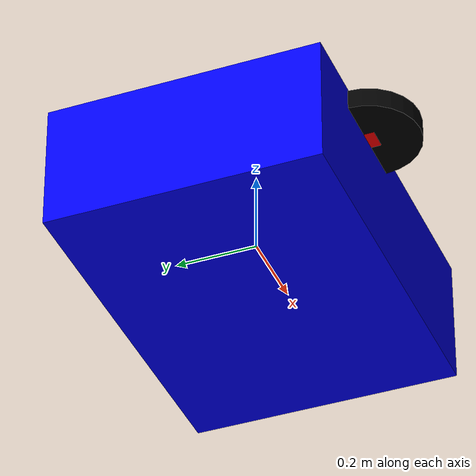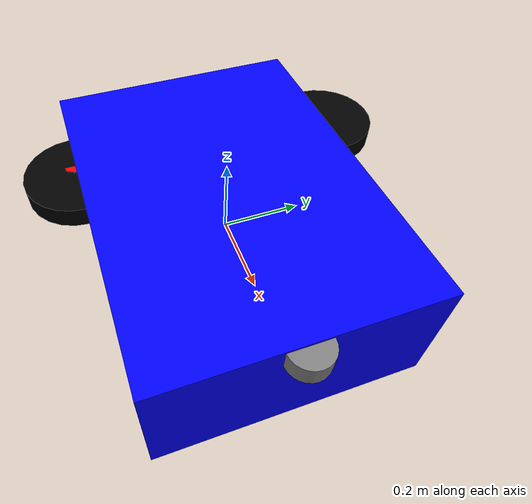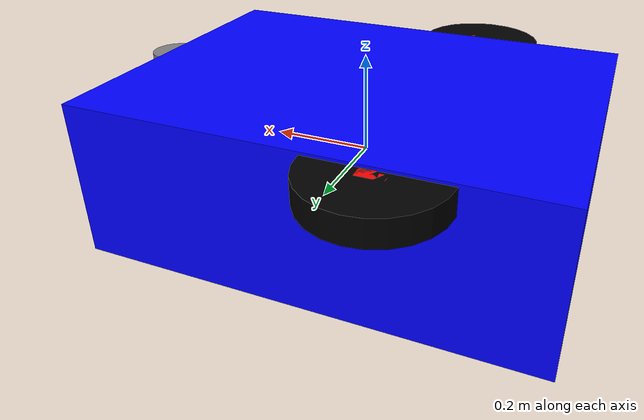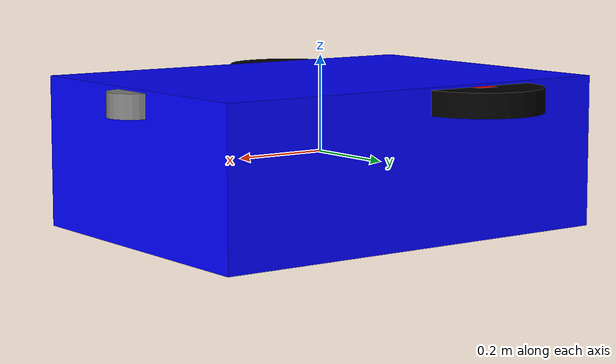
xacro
<?xml version="1.0"?>
<robot name="robomow_rl2000" xmlns:xacro="http://ros.org/wiki/xacro">
  <xacro:arg name="hardware_plugin" default="mock_components/GenericSystem"/>

  <!-- PARAMETRAR -->
  <xacro:property name="length" value="0.9"/>
  <xacro:property name="width" value="0.66"/>
  <xacro:property name="height" value="0.315"/>
  <xacro:property name="mass" value="23.7"/>
  <xacro:property name="wheel_radius" value="0.127"/> <!-- 10 tum / 2 i meter -->
  <xacro:property name="wheel_width" value="0.05"/>
  <xacro:property name="wheel_pos_x" value="-0.15"/> <!-- 0.3 m från bakände, med mitt i centrum på 0 -->
  <xacro:property name="wheel_pos_y" value="0.33"/>  <!-- Halv bredd -->

<material name="black">
  <color rgba="0 0 0 1"/>
</material>
<material name="red">
  <color rgba="1 0 0 1"/>
</material>
<material name="green">
  <color rgba="0 1 0 1"/>
</material>
<material name="gray">
  <color rgba="0.5 0.5 0.5 1"/>
</material>

<ros2_control name="RobomowSystem" type="system">
  <hardware>
	  <plugin>$(arg hardware_plugin)</plugin>
    <param name="wheel_radius">0.127</param>
    <param name="feedback_timeout_sec">0.25</param>
  </hardware>
  <joint name="left_wheel_motor_joint">
    <command_interface name="velocity"/>
    <state_interface name="position"/>
    <state_interface name="velocity"/>
  </joint>
  <joint name="right_wheel_motor_joint">
    <command_interface name="velocity"/>
    <state_interface name="position"/>
    <state_interface name="velocity"/>
  </joint>
</ros2_control>

<!-- BASE LINK -->
<link name="dummy_root"/>
<joint name="dummy_root_to_base_link" type="fixed">
  <parent link="dummy_root"/>
  <child link="base_link"/>
  <origin xyz="0 0 0" rpy="0 0 0"/>
</joint>
  <link name="base_link">
    <visual>
      <geometry>
        <box size="${length} ${width} ${height}"/>
      </geometry>
      <material name="blue">
        <color rgba="0 0 1 1"/>
      </material>
    </visual>
    <collision>
      <geometry>
        <box size="${length} ${width} ${height}"/>
      </geometry>
    </collision>
    <inertial>
      <mass value="${mass}"/>
      <inertia
        ixx="1.2" ixy="0.0" ixz="0.0"
        iyy="1.5" iyz="0.0"
        izz="1.0"/>
      <origin xyz="0 0 0" rpy="0 0 0"/>
    </inertial>
  </link>

  <!-- HJUL LINKAR -->
  <xacro:macro name="wheel" params="name">
    <link name="${name}">
      <visual>
        <geometry>
          <cylinder radius="${wheel_radius}" length="${wheel_width}"/>
        </geometry>
        <material name="black"/>
      </visual>
      <collision>
        <geometry>
          <cylinder radius="${wheel_radius}" length="${wheel_width}"/>
        </geometry>
      </collision>
      <inertial>
        <mass value="1.5"/>
        <inertia ixx="0.01" ixy="0" ixz="0" iyy="0.01" iyz="0" izz="0.01"/>
        <origin xyz="0 0 0" rpy="0 0 0"/>
      </inertial>
    </link>
  </xacro:macro>

  <xacro:wheel name="left_wheel"/>
  <xacro:wheel name="right_wheel"/>

  <!-- CASTER WHEEL -->
  <link name="caster_wheel">
    <visual>
      <geometry>
        <cylinder radius="0.05" length="0.05"/>
      </geometry>
      <material name="gray"/>
    </visual>
    <collision>
      <geometry>
        <cylinder radius="0.05" length="0.05"/>
      </geometry>
    </collision>
    <inertial>
      <mass value="0.5"/>
      <inertia ixx="0.005" ixy="0" ixz="0" iyy="0.005" iyz="0" izz="0.005"/>
      <origin xyz="0 0 0" rpy="0 0 0"/>
    </inertial>
  </link>

  <!-- JOINTS -->

  <!-- Left wheel joint -->
  <joint name="left_wheel_joint" type="continuous">
    <parent link="base_link"/>
    <child link="left_wheel"/>
    <origin xyz="${wheel_pos_x} ${wheel_pos_y} ${wheel_radius}" rpy="0 0 0"/>
    <axis xyz="0 1 0"/>
  </joint>

  <!-- Left wheel encoder joint (dummy sensor joint) -->
  <joint name="left_wheel_encoder_joint" type="fixed">
    <parent link="left_wheel"/>
    <child link="left_wheel_encoder"/>
    <origin xyz="0 0 0" rpy="0 0 0"/>
  </joint>

  <link name="left_wheel_encoder">
    <visual>
      <geometry>
        <sphere radius="0.02"/>
      </geometry>
      <material name="green"/>
    </visual>
  </link>

  <!-- Left wheel motor controller (effort joint) -->
  <joint name="left_wheel_motor_joint" type="continuous">
    <parent link="base_link"/>
    <child link="left_wheel_motor"/>
    <origin xyz="${wheel_pos_x} ${wheel_pos_y} ${wheel_radius}" rpy="0 0 0"/>
    <axis xyz="0 1 0"/>
  </joint>

  <link name="left_wheel_motor">
    <visual>
      <geometry>
        <box size="0.05 0.05 0.05"/>
      </geometry>
      <material name="red"/>
    </visual>
  </link>

  <!-- Right wheel joint -->
  <joint name="right_wheel_joint" type="continuous">
    <parent link="base_link"/>
    <child link="right_wheel"/>
    <origin xyz="${wheel_pos_x} -${wheel_pos_y} ${wheel_radius}" rpy="0 0 0"/>
    <axis xyz="0 1 0"/>
  </joint>

  <!-- Right wheel encoder joint -->
  <joint name="right_wheel_encoder_joint" type="fixed">
    <parent link="right_wheel"/>
    <child link="right_wheel_encoder"/>
    <origin xyz="0 0 0" rpy="0 0 0"/>
  </joint>

  <link name="right_wheel_encoder">
    <visual>
      <geometry>
        <sphere radius="0.02"/>
      </geometry>
      <material name="green"/>
    </visual>
  </link>

  <!-- Right wheel motor controller -->
  <joint name="right_wheel_motor_joint" type="continuous">
    <parent link="base_link"/>
    <child link="right_wheel_motor"/>
    <origin xyz="${wheel_pos_x} -${wheel_pos_y} ${wheel_radius}" rpy="0 0 0"/>
    <axis xyz="0 1 0"/>
  </joint>

  <link name="right_wheel_motor">
    <visual>
      <geometry>
        <box size="0.05 0.05 0.05"/>
      </geometry>
      <material name="red"/>
    </visual>
  </link>

  <!-- Caster wheel joint -->
  <joint name="caster_wheel_joint" type="fixed">
    <parent link="base_link"/>
    <child link="caster_wheel"/>
    <origin xyz="${length/2} 0 ${wheel_radius}" rpy="0 0 0"/>
  </joint>

  <!-- TRANSMISSIONS -->
  <transmission name="left_wheel_transmission">
    <type>transmission_interface/SimpleTransmission</type>
    <joint name="left_wheel_motor_joint">
      <hardwareInterface>hardware_interface/EffortJointInterface</hardwareInterface>
      <hardwareInterface>hardware_interface/PositionJointInterface</hardwareInterface>
    </joint>
    <actuator name="left_wheel_motor_actuator">
      <hardwareInterface>hardware_interface/EffortJointInterface</hardwareInterface>
      <mechanicalReduction>1</mechanicalReduction>
    </actuator>
  </transmission>

  <transmission name="right_wheel_transmission">
    <type>transmission_interface/SimpleTransmission</type>
    <joint name="right_wheel_motor_joint">
      <hardwareInterface>hardware_interface/EffortJointInterface</hardwareInterface>
      <hardwareInterface>hardware_interface/PositionJointInterface</hardwareInterface>
    </joint>
    <actuator name="right_wheel_motor_actuator">
      <hardwareInterface>hardware_interface/EffortJointInterface</hardwareInterface>
      <mechanicalReduction>1</mechanicalReduction>
    </actuator>
  </transmission>

</robot>
